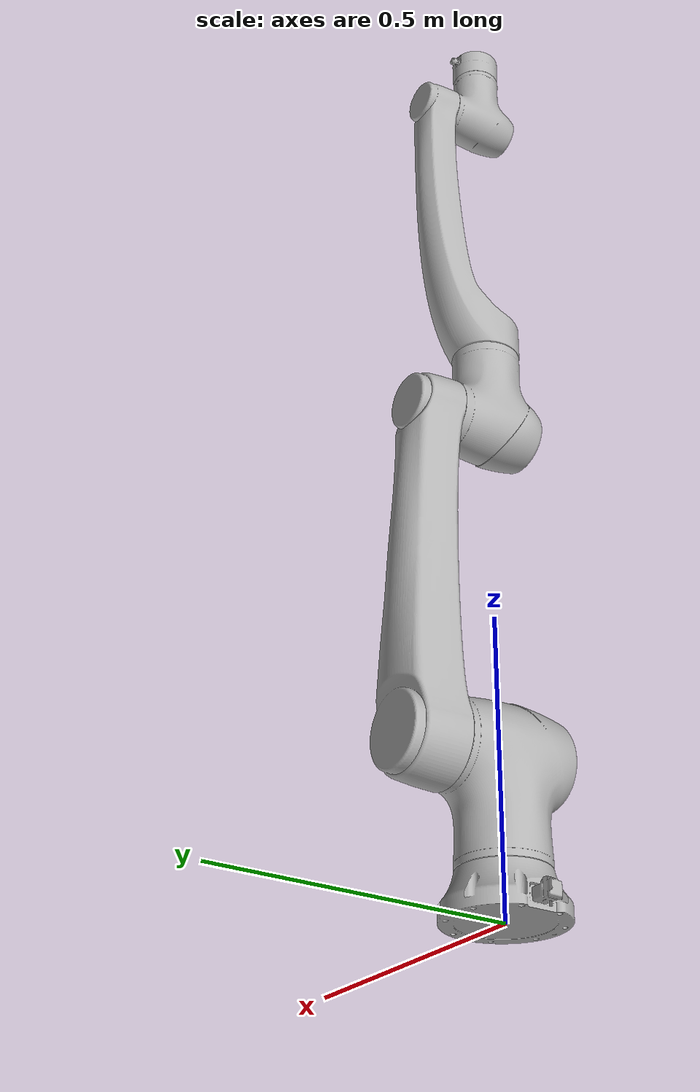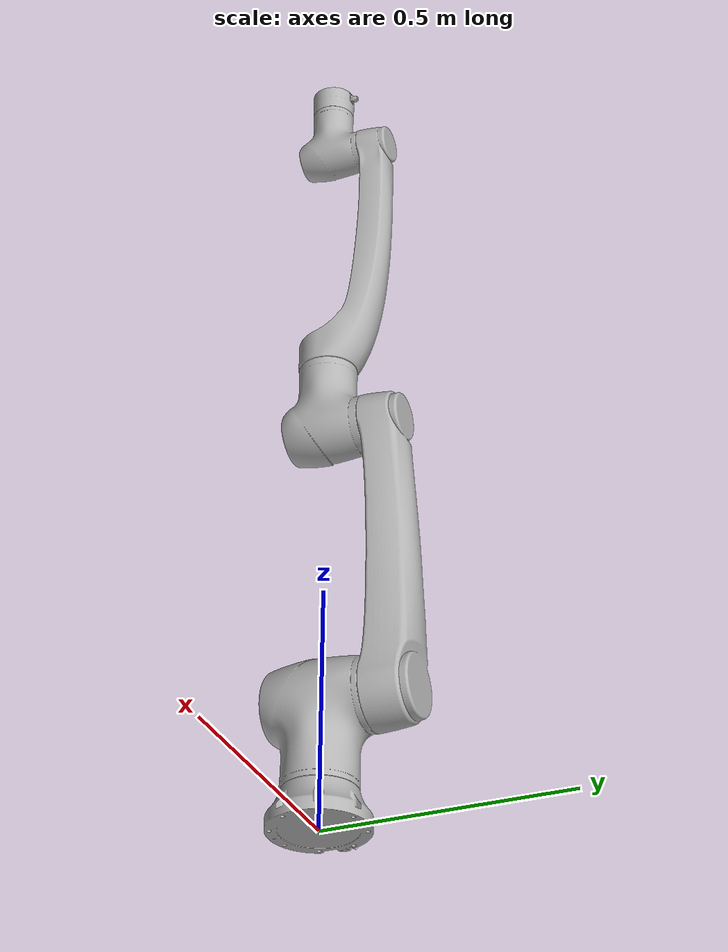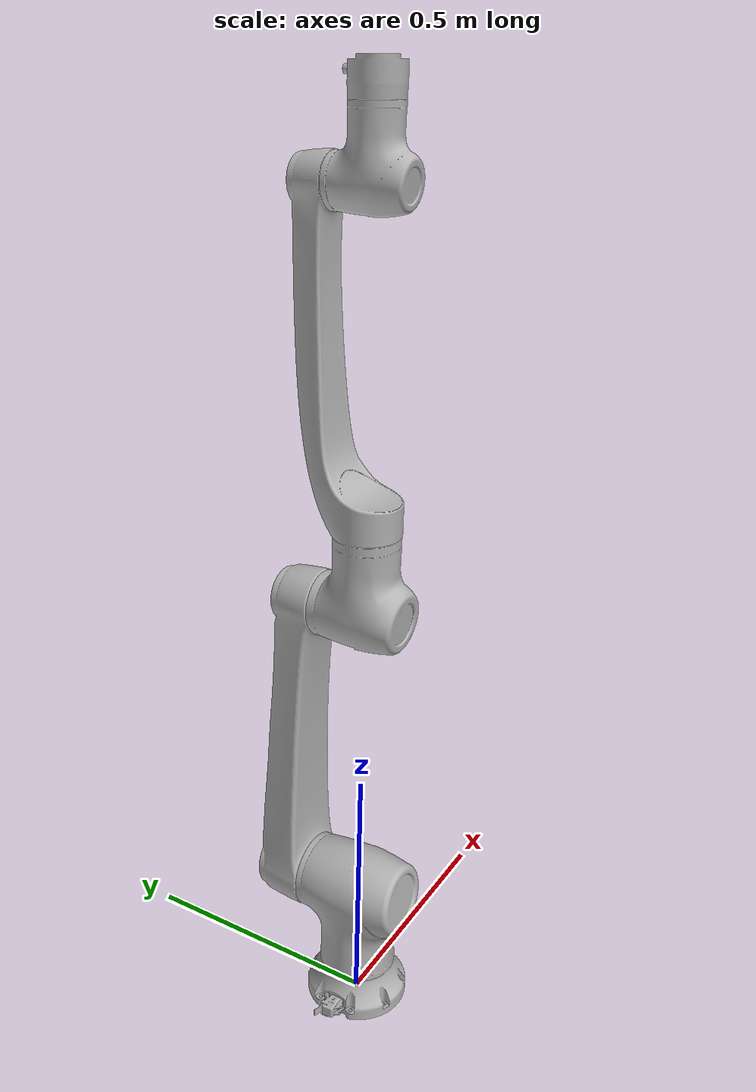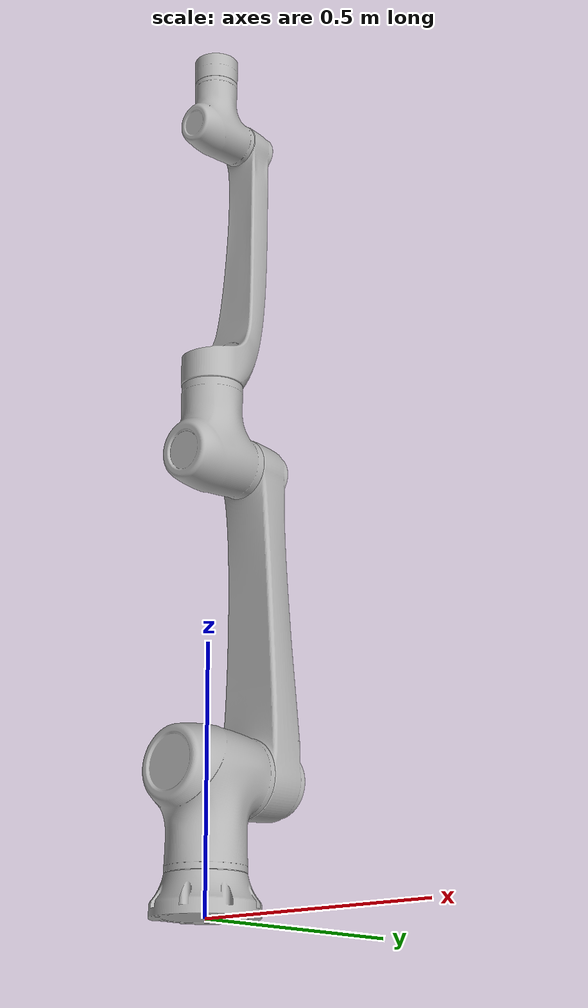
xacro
<?xml version="1.0" ?>
<robot name="CL108_CAD" xmlns:xacro="http://www.ros.org/wiki/xacro">

<xacro:include filename="$(find CL108_CAD_description)/urdf/materials.xacro" />
<xacro:include filename="$(find CL108_CAD_description)/urdf/CL108_CAD.trans" />
<xacro:include filename="$(find CL108_CAD_description)/urdf/CL108_CAD.gazebo" />
<link name="base_link">
  <inertial>
    <origin xyz="0.0024233181158877675 -1.8307567465498617e-06 0.02692760871560096" rpy="0 0 0"/>
    <mass value="6.948667147505599"/>
    <inertia ixx="0.02378" iyy="0.022432" izz="0.042073" ixy="-5e-06" iyz="1e-06" ixz="0.000184"/>
  </inertial>
  <visual>
    <origin xyz="0 0 0" rpy="0 0 0"/>
    <geometry>
      <mesh filename="package://CL108_CAD_description/meshes/base_link.stl" scale="0.001 0.001 0.001"/>
    </geometry>
    <material name="silver"/>
  </visual>
  <collision>
    <origin xyz="0 0 0" rpy="0 0 0"/>
    <geometry>
      <mesh filename="package://CL108_CAD_description/meshes/base_link.stl" scale="0.001 0.001 0.001"/>
    </geometry>
  </collision>
</link>

<link name="link1_1">
  <inertial>
    <origin xyz="-2.5417315911471666e-05 0.031748101339480875 0.14247136911711622" rpy="0 0 0"/>
    <mass value="26.50192961091554"/>
    <inertia ixx="0.295895" iyy="0.248198" izz="0.140838" ixy="-4.2e-05" iyz="-0.06183" ixz="2.3e-05"/>
  </inertial>
  <visual>
    <origin xyz="-0.0 0.0 -0.0455" rpy="0 0 0"/>
    <geometry>
      <mesh filename="package://CL108_CAD_description/meshes/link1_1.stl" scale="0.001 0.001 0.001"/>
    </geometry>
    <material name="silver"/>
  </visual>
  <collision>
    <origin xyz="-0.0 0.0 -0.0455" rpy="0 0 0"/>
    <geometry>
      <mesh filename="package://CL108_CAD_description/meshes/link1_1.stl" scale="0.001 0.001 0.001"/>
    </geometry>
  </collision>
</link>

<link name="link2_1">
  <inertial>
    <origin xyz="-7.605926116856955e-06 0.013219513779420933 0.26342512214737657" rpy="0 0 0"/>
    <mass value="21.56524853903648"/>
    <inertia ixx="1.05526" iyy="1.067985" izz="0.051967" ixy="1.6e-05" iyz="0.048059" ixz="7.8e-05"/>
  </inertial>
  <visual>
    <origin xyz="-0.0 -0.1345 -0.26" rpy="0 0 0"/>
    <geometry>
      <mesh filename="package://CL108_CAD_description/meshes/link2_1.stl" scale="0.001 0.001 0.001"/>
    </geometry>
    <material name="silver"/>
  </visual>
  <collision>
    <origin xyz="-0.0 -0.1345 -0.26" rpy="0 0 0"/>
    <geometry>
      <mesh filename="package://CL108_CAD_description/meshes/link2_1.stl" scale="0.001 0.001 0.001"/>
    </geometry>
  </collision>
</link>

<link name="link3_1">
  <inertial>
    <origin xyz="3.6914568282282755e-05 -0.08919839728680101 0.05666179411275085" rpy="0 0 0"/>
    <mass value="13.483560625023348"/>
    <inertia ixx="0.096515" iyy="0.078036" izz="0.048202" ixy="7e-06" iyz="0.018307" ixz="2.1e-05"/>
  </inertial>
  <visual>
    <origin xyz="-0.0 -0.113 -0.86" rpy="0 0 0"/>
    <geometry>
      <mesh filename="package://CL108_CAD_description/meshes/link3_1.stl" scale="0.001 0.001 0.001"/>
    </geometry>
    <material name="silver"/>
  </visual>
  <collision>
    <origin xyz="-0.0 -0.113 -0.86" rpy="0 0 0"/>
    <geometry>
      <mesh filename="package://CL108_CAD_description/meshes/link3_1.stl" scale="0.001 0.001 0.001"/>
    </geometry>
  </collision>
</link>

<link name="link4_1">
  <inertial>
    <origin xyz="-1.154561178034997e-05 0.06978153638815322 0.22174992605589838" rpy="0 0 0"/>
    <mass value="9.061028052036315"/>
    <inertia ixx="0.358892" iyy="0.345192" izz="0.029869" ixy="1e-06" iyz="-0.06097" ixz="3.3e-05"/>
  </inertial>
  <visual>
    <origin xyz="-0.0 0.0 -1.0365" rpy="0 0 0"/>
    <geometry>
      <mesh filename="package://CL108_CAD_description/meshes/link4_1.stl" scale="0.001 0.001 0.001"/>
    </geometry>
    <material name="silver"/>
  </visual>
  <collision>
    <origin xyz="-0.0 0.0 -1.0365" rpy="0 0 0"/>
    <geometry>
      <mesh filename="package://CL108_CAD_description/meshes/link4_1.stl" scale="0.001 0.001 0.001"/>
    </geometry>
  </collision>
</link>

<link name="link5_1">
  <inertial>
    <origin xyz="-9.978196573883561e-06 -0.05016628558099426 0.0424579013507973" rpy="0 0 0"/>
    <mass value="6.01313832791453"/>
    <inertia ixx="0.025811" iyy="0.019705" izz="0.012839" ixy="-5e-06" iyz="0.005428" ixz="1e-06"/>
  </inertial>
  <visual>
    <origin xyz="-0.0 -0.071 -1.56" rpy="0 0 0"/>
    <geometry>
      <mesh filename="package://CL108_CAD_description/meshes/link5_1.stl" scale="0.001 0.001 0.001"/>
    </geometry>
    <material name="silver"/>
  </visual>
  <collision>
    <origin xyz="-0.0 -0.071 -1.56" rpy="0 0 0"/>
    <geometry>
      <mesh filename="package://CL108_CAD_description/meshes/link5_1.stl" scale="0.001 0.001 0.001"/>
    </geometry>
  </collision>
</link>

<link name="link6_1">
  <inertial>
    <origin xyz="2.0543066195292326e-05 0.0004822365165697954 0.0070542043882617644" rpy="0 0 0"/>
    <mass value="1.6111944965258764"/>
    <inertia ixx="0.001051" iyy="0.001016" izz="0.00166" ixy="0.0" iyz="-1e-06" ixz="-1e-06"/>
  </inertial>
  <visual>
    <origin xyz="-0.0 -0.0 -1.6995" rpy="0 0 0"/>
    <geometry>
      <mesh filename="package://CL108_CAD_description/meshes/link6_1.stl" scale="0.001 0.001 0.001"/>
    </geometry>
    <material name="silver"/>
  </visual>
  <collision>
    <origin xyz="-0.0 -0.0 -1.6995" rpy="0 0 0"/>
    <geometry>
      <mesh filename="package://CL108_CAD_description/meshes/link6_1.stl" scale="0.001 0.001 0.001"/>
    </geometry>
  </collision>
</link>

<joint name="j1" type="continuous">
  <origin xyz="0.0 0.0 0.0455" rpy="0 0 0"/>
  <parent link="base_link"/>
  <child link="link1_1"/>
  <axis xyz="-0.0 -0.0 -1.0"/>
</joint>

<joint name="j2" type="continuous">
  <origin xyz="0.0 0.1345 0.2145" rpy="0 0 0"/>
  <parent link="link1_1"/>
  <child link="link2_1"/>
  <axis xyz="0.0 1.0 -0.0"/>
</joint>

<joint name="j3" type="continuous">
  <origin xyz="0.0 -0.0215 0.6" rpy="0 0 0"/>
  <parent link="link2_1"/>
  <child link="link3_1"/>
  <axis xyz="0.0 1.0 -0.0"/>
</joint>

<joint name="j4" type="continuous">
  <origin xyz="0.0 -0.113 0.1765" rpy="0 0 0"/>
  <parent link="link3_1"/>
  <child link="link4_1"/>
  <axis xyz="-0.0 -0.0 -1.0"/>
</joint>

<joint name="j5" type="continuous">
  <origin xyz="0.0 0.071 0.5235" rpy="0 0 0"/>
  <parent link="link4_1"/>
  <child link="link5_1"/>
  <axis xyz="-0.0 -1.0 0.0"/>
</joint>

<joint name="j6" type="continuous">
  <origin xyz="0.0 -0.071 0.1395" rpy="0 0 0"/>
  <parent link="link5_1"/>
  <child link="link6_1"/>
  <axis xyz="-0.0 -0.0 -1.0"/>
</joint>

</robot>

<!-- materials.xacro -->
<robot name="CL108_CAD" xmlns:xacro="http://www.ros.org/wiki/xacro" >

<material name="silver">
  <color rgba="0.700 0.700 0.700 1.000"/>
</material>

</robot>

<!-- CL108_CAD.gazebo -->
<robot name="CL108_CAD" xmlns:xacro="http://www.ros.org/wiki/xacro" >

<xacro:property name="body_color" value="Gazebo/Silver" />

<gazebo>
  <plugin name="control" filename="libgazebo_ros_control.so"/>
</gazebo>
<gazebo reference="base_link">
  <material>${body_color}</material>
  <mu1>0.2</mu1>
  <mu2>0.2</mu2>
  <selfCollide>true</selfCollide>
  <gravity>true</gravity>
</gazebo>

<gazebo reference="link1_1">
  <material>${body_color}</material>
  <mu1>0.2</mu1>
  <mu2>0.2</mu2>
  <selfCollide>true</selfCollide>
</gazebo>

<gazebo reference="link2_1">
  <material>${body_color}</material>
  <mu1>0.2</mu1>
  <mu2>0.2</mu2>
  <selfCollide>true</selfCollide>
</gazebo>

<gazebo reference="link3_1">
  <material>${body_color}</material>
  <mu1>0.2</mu1>
  <mu2>0.2</mu2>
  <selfCollide>true</selfCollide>
</gazebo>

<gazebo reference="link4_1">
  <material>${body_color}</material>
  <mu1>0.2</mu1>
  <mu2>0.2</mu2>
  <selfCollide>true</selfCollide>
</gazebo>

<gazebo reference="link5_1">
  <material>${body_color}</material>
  <mu1>0.2</mu1>
  <mu2>0.2</mu2>
  <selfCollide>true</selfCollide>
</gazebo>

<gazebo reference="link6_1">
  <material>${body_color}</material>
  <mu1>0.2</mu1>
  <mu2>0.2</mu2>
  <selfCollide>true</selfCollide>
</gazebo>

</robot>
